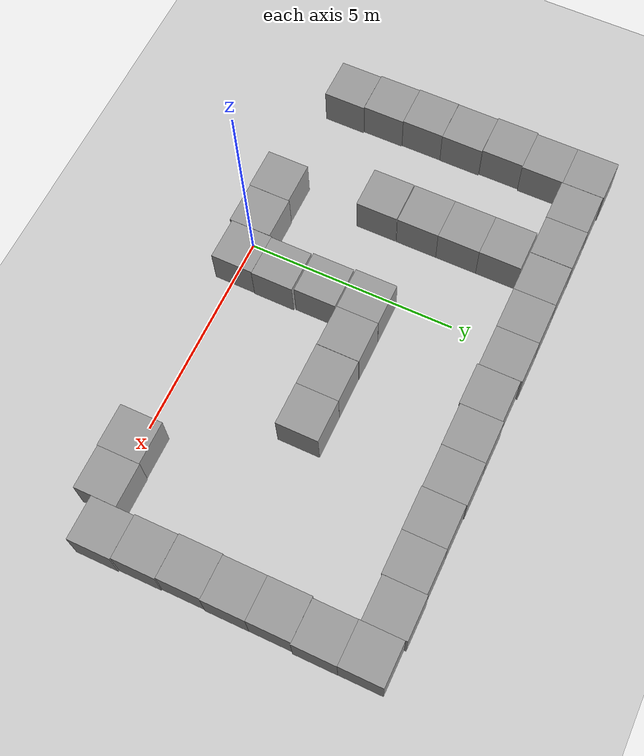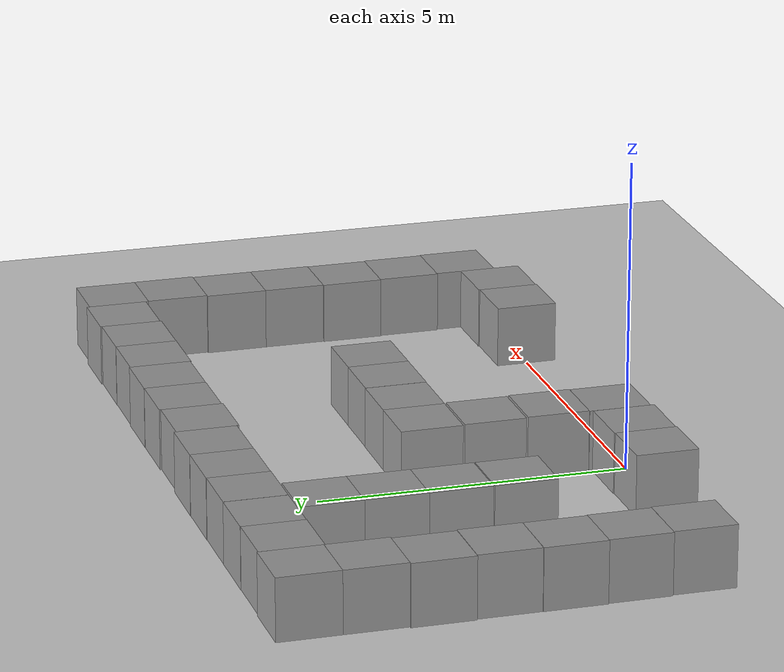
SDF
<sdf version="1.4">
 <world name="default">
  <model name="ground_plane">
   <static>1</static>
   <link name="link">
    <collision name="collision">
     <geometry><plane><normal>0 0 1</normal><size>100 100</size></plane></geometry>
     <surface><friction><ode><mu>100</mu><mu2>50</mu2></ode></friction></surface>
    </collision>
    <visual name="visual">
     <cast_shadows>0</cast_shadows>
     <geometry><plane><normal>0 0 1</normal><size>100 100</size></plane></geometry>
     <material>
      <script><uri>file://media/materials/scripts/gazebo.material</uri><name>Gazebo/Grey</name></script>
     </material>
    </visual>
    <velocity_decay><linear>0</linear><angular>0</angular></velocity_decay>
   </link>
  </model>
  <model name="unit_box_2">
   <pose>5.52699 0.007871 0.5 0 -0 0.001972</pose>
   <link name="link">
    <inertial>
     <mass>1</mass>
     <inertia><ixx>1</ixx><ixy>0</ixy><ixz>0</ixz><iyy>1</iyy><iyz>0</iyz><izz>1</izz></inertia>
    </inertial>
    <collision name="collision"><geometry><box><size>1 1 1</size></box></geometry></collision>
    <visual name="visual">
     <geometry><box><size>1 1 1</size></box></geometry>
     <material>
      <script><uri>file://media/materials/scripts/gazebo.material</uri><name>Gazebo/Grey</name></script>
     </material>
    </visual>
    <velocity_decay><linear>0</linear><angular>0</angular></velocity_decay>
   </link>
   <static>0</static>
  </model>
  <model name="unit_box_8">
   <pose>0.541933 3.15507 0.5 0 -0 -0.000614</pose>
   <link name="link">
    <inertial>
     <mass>1</mass>
     <inertia><ixx>1</ixx><ixy>0</ixy><ixz>0</ixz><iyy>1</iyy><iyz>0</iyz><izz>1</izz></inertia>
    </inertial>
    <collision name="collision"><geometry><box><size>1 1 1</size></box></geometry></collision>
    <visual name="visual">
     <geometry><box><size>1 1 1</size></box></geometry>
     <material>
      <script><uri>file://media/materials/scripts/gazebo.material</uri><name>Gazebo/Grey</name></script>
     </material>
    </visual>
    <velocity_decay><linear>0</linear><angular>0</angular></velocity_decay>
   </link>
   <static>0</static>
  </model>
  <model name="unit_box_9">
   <pose>-1.42464 0.017178 0.5 0 0 -0.000225</pose>
   <link name="link">
    <inertial>
     <mass>1</mass>
     <inertia><ixx>1</ixx><ixy>0</ixy><ixz>0</ixz><iyy>1</iyy><iyz>0</iyz><izz>1</izz></inertia>
    </inertial>
    <collision name="collision"><geometry><box><size>1 1 1</size></box></geometry></collision>
    <visual name="visual">
     <geometry><box><size>1 1 1</size></box></geometry>
     <material>
      <script><uri>file://media/materials/scripts/gazebo.material</uri><name>Gazebo/Grey</name></script>
     </material>
    </visual>
    <velocity_decay><linear>0</linear><angular>0</angular></velocity_decay>
   </link>
   <static>0</static>
  </model>
  <model name="unit_box_10">
   <pose>-0.424263 0.032274 0.5 0 0 -0.000928</pose>
   <link name="link">
    <inertial>
     <mass>1</mass>
     <inertia><ixx>1</ixx><ixy>0</ixy><ixz>0</ixz><iyy>1</iyy><iyz>0</iyz><izz>1</izz></inertia>
    </inertial>
    <collision name="collision"><geometry><box><size>1 1 1</size></box></geometry></collision>
    <visual name="visual">
     <geometry><box><size>1 1 1</size></box></geometry>
     <material>
      <script><uri>file://media/materials/scripts/gazebo.material</uri><name>Gazebo/Grey</name></script>
     </material>
    </visual>
    <velocity_decay><linear>0</linear><angular>0</angular></velocity_decay>
   </link>
   <static>0</static>
  </model>
  <model name="unit_box_11">
   <pose>6.52698 0.026177 0.5 0 -0 0.001957</pose>
   <link name="link">
    <inertial>
     <mass>1</mass>
     <inertia><ixx>1</ixx><ixy>0</ixy><ixz>0</ixz><iyy>1</iyy><iyz>0</iyz><izz>1</izz></inertia>
    </inertial>
    <collision name="collision"><geometry><box><size>1 1 1</size></box></geometry></collision>
    <visual name="visual">
     <geometry><box><size>1 1 1</size></box></geometry>
     <material>
      <script><uri>file://media/materials/scripts/gazebo.material</uri><name>Gazebo/Grey</name></script>
     </material>
    </visual>
    <velocity_decay><linear>0</linear><angular>0</angular></velocity_decay>
   </link>
   <static>0</static>
  </model>
  <model name="unit_box_13">
   <pose>0.577874 0.086392 0.5 0 0 -0.004729</pose>
   <link name="link">
    <inertial>
     <mass>1</mass>
     <inertia><ixx>1</ixx><ixy>0</ixy><ixz>0</ixz><iyy>1</iyy><iyz>0</iyz><izz>1</izz></inertia>
    </inertial>
    <collision name="collision"><geometry><box><size>1 1 1</size></box></geometry></collision>
    <visual name="visual">
     <geometry><box><size>1 1 1</size></box></geometry>
     <material>
      <script><uri>file://media/materials/scripts/gazebo.material</uri><name>Gazebo/Grey</name></script>
     </material>
    </visual>
    <velocity_decay><linear>0</linear><angular>0</angular></velocity_decay>
   </link>
   <static>0</static>
  </model>
  <model name="unit_box_20">
   <pose>0.597692 1.08685 0.5 0 0 -0.003673</pose>
   <link name="link">
    <inertial>
     <mass>1</mass>
     <inertia><ixx>1</ixx><ixy>0</ixy><ixz>0</ixz><iyy>1</iyy><iyz>0</iyz><izz>1</izz></inertia>
    </inertial>
    <collision name="collision"><geometry><box><size>1 1 1</size></box></geometry></collision>
    <visual name="visual">
     <geometry><box><size>1 1 1</size></box></geometry>
     <material>
      <script><uri>file://media/materials/scripts/gazebo.material</uri><name>Gazebo/Grey</name></script>
     </material>
    </visual>
    <velocity_decay><linear>0</linear><angular>0</angular></velocity_decay>
   </link>
   <static>0</static>
  </model>
  <model name="unit_box_27">
   <pose>0.569819 2.12332 0.5 0 -0 7e-05</pose>
   <link name="link">
    <inertial>
     <mass>1</mass>
     <inertia><ixx>1</ixx><ixy>0</ixy><ixz>0</ixz><iyy>1</iyy><iyz>0</iyz><izz>1</izz></inertia>
    </inertial>
    <collision name="collision"><geometry><box><size>1 1 1</size></box></geometry></collision>
    <visual name="visual">
     <geometry><box><size>1 1 1</size></box></geometry>
     <material>
      <script><uri>file://media/materials/scripts/gazebo.material</uri><name>Gazebo/Grey</name></script>
     </material>
    </visual>
    <velocity_decay><linear>0</linear><angular>0</angular></velocity_decay>
   </link>
   <static>0</static>
  </model>
  <model name="unit_box_35">
   <pose>-1.48166 6.4982 0.5 0 -0 -0.001227</pose>
   <link name="link">
    <inertial>
     <mass>1</mass>
     <inertia><ixx>1</ixx><ixy>0</ixy><ixz>0</ixz><iyy>1</iyy><iyz>0</iyz><izz>1</izz></inertia>
    </inertial>
    <collision name="collision"><geometry><box><size>1 1 1</size></box></geometry></collision>
    <visual name="visual">
     <geometry><box><size>1 1 1</size></box></geometry>
     <material>
      <script><uri>file://media/materials/scripts/gazebo.material</uri><name>Gazebo/Grey</name></script>
     </material>
    </visual>
    <velocity_decay><linear>0</linear><angular>0</angular></velocity_decay>
   </link>
   <static>0</static>
  </model>
  <model name="unit_box_66">
   <pose>-4.44414 0.505606 0.5 0 0 -0.001511</pose>
   <link name="link">
    <inertial>
     <mass>1</mass>
     <inertia><ixx>1</ixx><ixy>0</ixy><ixz>0</ixz><iyy>1</iyy><iyz>0</iyz><izz>1</izz></inertia>
    </inertial>
    <collision name="collision"><geometry><box><size>1 1 1</size></box></geometry></collision>
    <visual name="visual">
     <geometry><box><size>1 1 1</size></box></geometry>
     <material>
      <script><uri>file://media/materials/scripts/gazebo.material</uri><name>Gazebo/Grey</name></script>
     </material>
    </visual>
    <velocity_decay><linear>0</linear><angular>0</angular></velocity_decay>
   </link>
   <static>0</static>
  </model>
  <model name="unit_box_67">
   <pose>-4.47509 1.50697 0.5 0 -0 0.001289</pose>
   <link name="link">
    <inertial>
     <mass>1</mass>
     <inertia><ixx>1</ixx><ixy>0</ixy><ixz>0</ixz><iyy>1</iyy><iyz>0</iyz><izz>1</izz></inertia>
    </inertial>
    <collision name="collision"><geometry><box><size>1 1 1</size></box></geometry></collision>
    <visual name="visual">
     <geometry><box><size>1 1 1</size></box></geometry>
     <material>
      <script><uri>file://media/materials/scripts/gazebo.material</uri><name>Gazebo/Grey</name></script>
     </material>
    </visual>
    <velocity_decay><linear>0</linear><angular>0</angular></velocity_decay>
   </link>
   <static>0</static>
  </model>
  <model name="unit_box_68">
   <pose>-4.49632 2.50695 0.5 0 -0 0.001286</pose>
   <link name="link">
    <inertial>
     <mass>1</mass>
     <inertia><ixx>1</ixx><ixy>0</ixy><ixz>0</ixz><iyy>1</iyy><iyz>0</iyz><izz>1</izz></inertia>
    </inertial>
    <collision name="collision"><geometry><box><size>1 1 1</size></box></geometry></collision>
    <visual name="visual">
     <geometry><box><size>1 1 1</size></box></geometry>
     <material>
      <script><uri>file://media/materials/scripts/gazebo.material</uri><name>Gazebo/Grey</name></script>
     </material>
    </visual>
    <velocity_decay><linear>0</linear><angular>0</angular></velocity_decay>
   </link>
   <static>0</static>
  </model>
  <model name="unit_box_69">
   <pose>-4.48877 3.50867 0.5 -0 -0 -0.002126</pose>
   <link name="link">
    <inertial>
     <mass>1</mass>
     <inertia><ixx>1</ixx><ixy>0</ixy><ixz>0</ixz><iyy>1</iyy><iyz>0</iyz><izz>1</izz></inertia>
    </inertial>
    <collision name="collision"><geometry><box><size>1 1 1</size></box></geometry></collision>
    <visual name="visual">
     <geometry><box><size>1 1 1</size></box></geometry>
     <material>
      <script><uri>file://media/materials/scripts/gazebo.material</uri><name>Gazebo/Grey</name></script>
     </material>
    </visual>
    <velocity_decay><linear>0</linear><angular>0</angular></velocity_decay>
   </link>
   <static>0</static>
  </model>
  <model name="unit_box_70">
   <pose>-4.52021 4.51315 0.5 0 -0 0.001164</pose>
   <link name="link">
    <inertial>
     <mass>1</mass>
     <inertia><ixx>1</ixx><ixy>0</ixy><ixz>0</ixz><iyy>1</iyy><iyz>0</iyz><izz>1</izz></inertia>
    </inertial>
    <collision name="collision"><geometry><box><size>1 1 1</size></box></geometry></collision>
    <visual name="visual">
     <geometry><box><size>1 1 1</size></box></geometry>
     <material>
      <script><uri>file://media/materials/scripts/gazebo.material</uri><name>Gazebo/Grey</name></script>
     </material>
    </visual>
    <velocity_decay><linear>0</linear><angular>0</angular></velocity_decay>
   </link>
   <static>0</static>
  </model>
  <model name="unit_box_71">
   <pose>-4.48521 5.51325 0.5 0 -0 0.001231</pose>
   <link name="link">
    <inertial>
     <mass>1</mass>
     <inertia><ixx>1</ixx><ixy>0</ixy><ixz>0</ixz><iyy>1</iyy><iyz>0</iyz><izz>1</izz></inertia>
    </inertial>
    <collision name="collision"><geometry><box><size>1 1 1</size></box></geometry></collision>
    <visual name="visual">
     <geometry><box><size>1 1 1</size></box></geometry>
     <material>
      <script><uri>file://media/materials/scripts/gazebo.material</uri><name>Gazebo/Grey</name></script>
     </material>
    </visual>
    <velocity_decay><linear>0</linear><angular>0</angular></velocity_decay>
   </link>
   <static>0</static>
  </model>
  <model name="unit_box_72">
   <pose>-4.48655 6.51333 0.5 0 -0 0.001313</pose>
   <link name="link">
    <inertial>
     <mass>1</mass>
     <inertia><ixx>1</ixx><ixy>0</ixy><ixz>0</ixz><iyy>1</iyy><iyz>0</iyz><izz>1</izz></inertia>
    </inertial>
    <collision name="collision"><geometry><box><size>1 1 1</size></box></geometry></collision>
    <visual name="visual">
     <geometry><box><size>1 1 1</size></box></geometry>
     <material>
      <script><uri>file://media/materials/scripts/gazebo.material</uri><name>Gazebo/Grey</name></script>
     </material>
    </visual>
    <velocity_decay><linear>0</linear><angular>0</angular></velocity_decay>
   </link>
   <static>0</static>
  </model>
  <model name="unit_box_73">
   <pose>-3.4852 6.49521 0.5 0 -0 0.00011</pose>
   <link name="link">
    <inertial>
     <mass>1</mass>
     <inertia><ixx>1</ixx><ixy>0</ixy><ixz>0</ixz><iyy>1</iyy><iyz>0</iyz><izz>1</izz></inertia>
    </inertial>
    <collision name="collision"><geometry><box><size>1 1 1</size></box></geometry></collision>
    <visual name="visual">
     <geometry><box><size>1 1 1</size></box></geometry>
     <material>
      <script><uri>file://media/materials/scripts/gazebo.material</uri><name>Gazebo/Grey</name></script>
     </material>
    </visual>
    <velocity_decay><linear>0</linear><angular>0</angular></velocity_decay>
   </link>
   <static>0</static>
  </model>
  <model name="unit_box_74">
   <pose>-2.48507 6.49995 0.5 0 -0 0.000269</pose>
   <link name="link">
    <inertial>
     <mass>1</mass>
     <inertia><ixx>1</ixx><ixy>0</ixy><ixz>0</ixz><iyy>1</iyy><iyz>0</iyz><izz>1</izz></inertia>
    </inertial>
    <collision name="collision"><geometry><box><size>1 1 1</size></box></geometry></collision>
    <visual name="visual">
     <geometry><box><size>1 1 1</size></box></geometry>
     <material>
      <script><uri>file://media/materials/scripts/gazebo.material</uri><name>Gazebo/Grey</name></script>
     </material>
    </visual>
    <velocity_decay><linear>0</linear><angular>0</angular></velocity_decay>
   </link>
   <static>0</static>
  </model>
  <model name="unit_box_76">
   <pose>-0.481557 6.50236 0.5 0 -0 -0.001259</pose>
   <link name="link">
    <inertial>
     <mass>1</mass>
     <inertia><ixx>1</ixx><ixy>0</ixy><ixz>0</ixz><iyy>1</iyy><iyz>0</iyz><izz>1</izz></inertia>
    </inertial>
    <collision name="collision"><geometry><box><size>1 1 1</size></box></geometry></collision>
    <visual name="visual">
     <geometry><box><size>1 1 1</size></box></geometry>
     <material>
      <script><uri>file://media/materials/scripts/gazebo.material</uri><name>Gazebo/Grey</name></script>
     </material>
    </visual>
    <velocity_decay><linear>0</linear><angular>0</angular></velocity_decay>
   </link>
   <static>0</static>
  </model>
  <model name="unit_box_77">
   <pose>0.518563 6.50445 0.5 0 0 -0.001254</pose>
   <link name="link">
    <inertial>
     <mass>1</mass>
     <inertia><ixx>1</ixx><ixy>0</ixy><ixz>0</ixz><iyy>1</iyy><iyz>0</iyz><izz>1</izz></inertia>
    </inertial>
    <collision name="collision"><geometry><box><size>1 1 1</size></box></geometry></collision>
    <visual name="visual">
     <geometry><box><size>1 1 1</size></box></geometry>
     <material>
      <script><uri>file://media/materials/scripts/gazebo.material</uri><name>Gazebo/Grey</name></script>
     </material>
    </visual>
    <velocity_decay><linear>0</linear><angular>0</angular></velocity_decay>
   </link>
   <static>0</static>
  </model>
  <model name="unit_box_78">
   <pose>1.51856 6.46711 0.5 0 0 -0.00118</pose>
   <link name="link">
    <inertial>
     <mass>1</mass>
     <inertia><ixx>1</ixx><ixy>0</ixy><ixz>0</ixz><iyy>1</iyy><iyz>0</iyz><izz>1</izz></inertia>
    </inertial>
    <collision name="collision"><geometry><box><size>1 1 1</size></box></geometry></collision>
    <visual name="visual">
     <geometry><box><size>1 1 1</size></box></geometry>
     <material>
      <script><uri>file://media/materials/scripts/gazebo.material</uri><name>Gazebo/Grey</name></script>
     </material>
    </visual>
    <velocity_decay><linear>0</linear><angular>0</angular></velocity_decay>
   </link>
   <static>0</static>
  </model>
  <model name="unit_box_79">
   <pose>2.51862 6.49016 0.5 0 0 -0.001165</pose>
   <link name="link">
    <inertial>
     <mass>1</mass>
     <inertia><ixx>1</ixx><ixy>0</ixy><ixz>0</ixz><iyy>1</iyy><iyz>0</iyz><izz>1</izz></inertia>
    </inertial>
    <collision name="collision"><geometry><box><size>1 1 1</size></box></geometry></collision>
    <visual name="visual">
     <geometry><box><size>1 1 1</size></box></geometry>
     <material>
      <script><uri>file://media/materials/scripts/gazebo.material</uri><name>Gazebo/Grey</name></script>
     </material>
    </visual>
    <velocity_decay><linear>0</linear><angular>0</angular></velocity_decay>
   </link>
   <static>0</static>
  </model>
  <model name="unit_box_80">
   <pose>3.51864 6.49279 0.5 0 0 -0.00115</pose>
   <link name="link">
    <inertial>
     <mass>1</mass>
     <inertia><ixx>1</ixx><ixy>0</ixy><ixz>0</ixz><iyy>1</iyy><iyz>0</iyz><izz>1</izz></inertia>
    </inertial>
    <collision name="collision"><geometry><box><size>1 1 1</size></box></geometry></collision>
    <visual name="visual">
     <geometry><box><size>1 1 1</size></box></geometry>
     <material>
      <script><uri>file://media/materials/scripts/gazebo.material</uri><name>Gazebo/Grey</name></script>
     </material>
    </visual>
    <velocity_decay><linear>0</linear><angular>0</angular></velocity_decay>
   </link>
   <static>0</static>
  </model>
  <model name="unit_box_81">
   <pose>4.51865 6.47674 0.5 -0 -0 -0.001084</pose>
   <link name="link">
    <inertial>
     <mass>1</mass>
     <inertia><ixx>1</ixx><ixy>0</ixy><ixz>0</ixz><iyy>1</iyy><iyz>0</iyz><izz>1</izz></inertia>
    </inertial>
    <collision name="collision"><geometry><box><size>1 1 1</size></box></geometry></collision>
    <visual name="visual">
     <geometry><box><size>1 1 1</size></box></geometry>
     <material>
      <script><uri>file://media/materials/scripts/gazebo.material</uri><name>Gazebo/Grey</name></script>
     </material>
    </visual>
    <velocity_decay><linear>0</linear><angular>0</angular></velocity_decay>
   </link>
   <static>0</static>
  </model>
  <model name="unit_box_82">
   <pose>5.51866 6.47915 0.5 0 -0 -0.001078</pose>
   <link name="link">
    <inertial>
     <mass>1</mass>
     <inertia><ixx>1</ixx><ixy>0</ixy><ixz>0</ixz><iyy>1</iyy><iyz>0</iyz><izz>1</izz></inertia>
    </inertial>
    <collision name="collision"><geometry><box><size>1 1 1</size></box></geometry></collision>
    <visual name="visual">
     <geometry><box><size>1 1 1</size></box></geometry>
     <material>
      <script><uri>file://media/materials/scripts/gazebo.material</uri><name>Gazebo/Grey</name></script>
     </material>
    </visual>
    <velocity_decay><linear>0</linear><angular>0</angular></velocity_decay>
   </link>
   <static>0</static>
  </model>
  <model name="unit_box_83">
   <pose>6.51874 6.49978 0.5 -0 -0 -0.000968</pose>
   <link name="link">
    <inertial>
     <mass>1</mass>
     <inertia><ixx>1</ixx><ixy>0</ixy><ixz>0</ixz><iyy>1</iyy><iyz>0</iyz><izz>1</izz></inertia>
    </inertial>
    <collision name="collision"><geometry><box><size>1 1 1</size></box></geometry></collision>
    <visual name="visual">
     <geometry><box><size>1 1 1</size></box></geometry>
     <material>
      <script><uri>file://media/materials/scripts/gazebo.material</uri><name>Gazebo/Grey</name></script>
     </material>
    </visual>
    <velocity_decay><linear>0</linear><angular>0</angular></velocity_decay>
   </link>
   <static>0</static>
  </model>
  <model name="unit_box_84">
   <pose>7.5263 0.450156 0.5 0 -0 0.00252</pose>
   <link name="link">
    <inertial>
     <mass>1</mass>
     <inertia><ixx>1</ixx><ixy>0</ixy><ixz>0</ixz><iyy>1</iyy><iyz>0</iyz><izz>1</izz></inertia>
    </inertial>
    <collision name="collision"><geometry><box><size>1 1 1</size></box></geometry></collision>
    <visual name="visual">
     <geometry><box><size>1 1 1</size></box></geometry>
     <material>
      <script><uri>file://media/materials/scripts/gazebo.material</uri><name>Gazebo/Grey</name></script>
     </material>
    </visual>
    <velocity_decay><linear>0</linear><angular>0</angular></velocity_decay>
   </link>
   <static>0</static>
  </model>
  <model name="unit_box_85">
   <pose>7.49946 1.45018 0.5 0 -0 0.002641</pose>
   <link name="link">
    <inertial>
     <mass>1</mass>
     <inertia><ixx>1</ixx><ixy>0</ixy><ixz>0</ixz><iyy>1</iyy><iyz>0</iyz><izz>1</izz></inertia>
    </inertial>
    <collision name="collision"><geometry><box><size>1 1 1</size></box></geometry></collision>
    <visual name="visual">
     <geometry><box><size>1 1 1</size></box></geometry>
     <material>
      <script><uri>file://media/materials/scripts/gazebo.material</uri><name>Gazebo/Grey</name></script>
     </material>
    </visual>
    <velocity_decay><linear>0</linear><angular>0</angular></velocity_decay>
   </link>
   <static>0</static>
  </model>
  <model name="unit_box_86">
   <pose>7.47752 2.4509 0.5 0 -0 0.001102</pose>
   <link name="link">
    <inertial>
     <mass>1</mass>
     <inertia><ixx>1</ixx><ixy>0</ixy><ixz>0</ixz><iyy>1</iyy><iyz>0</iyz><izz>1</izz></inertia>
    </inertial>
    <collision name="collision"><geometry><box><size>1 1 1</size></box></geometry></collision>
    <visual name="visual">
     <geometry><box><size>1 1 1</size></box></geometry>
     <material>
      <script><uri>file://media/materials/scripts/gazebo.material</uri><name>Gazebo/Grey</name></script>
     </material>
    </visual>
    <velocity_decay><linear>0</linear><angular>0</angular></velocity_decay>
   </link>
   <static>0</static>
  </model>
  <model name="unit_box_87">
   <pose>7.49252 3.45118 0.5 0 -0 0.000558</pose>
   <link name="link">
    <inertial>
     <mass>1</mass>
     <inertia><ixx>1</ixx><ixy>0</ixy><ixz>0</ixz><iyy>1</iyy><iyz>0</iyz><izz>1</izz></inertia>
    </inertial>
    <collision name="collision"><geometry><box><size>1 1 1</size></box></geometry></collision>
    <visual name="visual">
     <geometry><box><size>1 1 1</size></box></geometry>
     <material>
      <script><uri>file://media/materials/scripts/gazebo.material</uri><name>Gazebo/Grey</name></script>
     </material>
    </visual>
    <velocity_decay><linear>0</linear><angular>0</angular></velocity_decay>
   </link>
   <static>0</static>
  </model>
  <model name="unit_box_88">
   <pose>7.48932 4.45129 0.5 0 -0 0.000335</pose>
   <link name="link">
    <inertial>
     <mass>1</mass>
     <inertia><ixx>1</ixx><ixy>0</ixy><ixz>0</ixz><iyy>1</iyy><iyz>0</iyz><izz>1</izz></inertia>
    </inertial>
    <collision name="collision"><geometry><box><size>1 1 1</size></box></geometry></collision>
    <visual name="visual">
     <geometry><box><size>1 1 1</size></box></geometry>
     <material>
      <script><uri>file://media/materials/scripts/gazebo.material</uri><name>Gazebo/Grey</name></script>
     </material>
    </visual>
    <velocity_decay><linear>0</linear><angular>0</angular></velocity_decay>
   </link>
   <static>0</static>
  </model>
  <model name="unit_box_89">
   <pose>7.52273 5.45185 0.5 0 0 -0.00084</pose>
   <link name="link">
    <inertial>
     <mass>1</mass>
     <inertia><ixx>1</ixx><ixy>0</ixy><ixz>0</ixz><iyy>1</iyy><iyz>0</iyz><izz>1</izz></inertia>
    </inertial>
    <collision name="collision"><geometry><box><size>1 1 1</size></box></geometry></collision>
    <visual name="visual">
     <geometry><box><size>1 1 1</size></box></geometry>
     <material>
      <script><uri>file://media/materials/scripts/gazebo.material</uri><name>Gazebo/Grey</name></script>
     </material>
    </visual>
    <velocity_decay><linear>0</linear><angular>0</angular></velocity_decay>
   </link>
   <static>0</static>
  </model>
  <model name="unit_box_90">
   <pose>7.51876 6.45186 0.5 -0 -0 -0.000844</pose>
   <link name="link">
    <inertial>
     <mass>1</mass>
     <inertia><ixx>1</ixx><ixy>0</ixy><ixz>0</ixz><iyy>1</iyy><iyz>0</iyz><izz>1</izz></inertia>
    </inertial>
    <collision name="collision"><geometry><box><size>1 1 1</size></box></geometry></collision>
    <visual name="visual">
     <geometry><box><size>1 1 1</size></box></geometry>
     <material>
      <script><uri>file://media/materials/scripts/gazebo.material</uri><name>Gazebo/Grey</name></script>
     </material>
    </visual>
    <velocity_decay><linear>0</linear><angular>0</angular></velocity_decay>
   </link>
   <static>0</static>
  </model>
  <model name="unit_box_91">
   <pose>1.54194 3.15202 0.5 0 0 -0.000612</pose>
   <link name="link">
    <inertial>
     <mass>1</mass>
     <inertia><ixx>1</ixx><ixy>0</ixy><ixz>0</ixz><iyy>1</iyy><iyz>0</iyz><izz>1</izz></inertia>
    </inertial>
    <collision name="collision"><geometry><box><size>1 1 1</size></box></geometry></collision>
    <visual name="visual">
     <geometry><box><size>1 1 1</size></box></geometry>
     <material>
      <script><uri>file://media/materials/scripts/gazebo.material</uri><name>Gazebo/Grey</name></script>
     </material>
    </visual>
    <velocity_decay><linear>0</linear><angular>0</angular></velocity_decay>
   </link>
   <static>0</static>
  </model>
  <model name="unit_box_92">
   <pose>2.54544 3.14603 0.5 0 -0 -1e-05</pose>
   <link name="link">
    <inertial>
     <mass>1</mass>
     <inertia><ixx>1</ixx><ixy>0</ixy><ixz>0</ixz><iyy>1</iyy><iyz>0</iyz><izz>1</izz></inertia>
    </inertial>
    <collision name="collision"><geometry><box><size>1 1 1</size></box></geometry></collision>
    <visual name="visual">
     <geometry><box><size>1 1 1</size></box></geometry>
     <material>
      <script><uri>file://media/materials/scripts/gazebo.material</uri><name>Gazebo/Grey</name></script>
     </material>
    </visual>
    <velocity_decay><linear>0</linear><angular>0</angular></velocity_decay>
   </link>
   <static>0</static>
  </model>
  <model name="unit_box_93">
   <pose>3.54544 3.14475 0.5 -0 -0 -1e-05</pose>
   <link name="link">
    <inertial>
     <mass>1</mass>
     <inertia><ixx>1</ixx><ixy>0</ixy><ixz>0</ixz><iyy>1</iyy><iyz>0</iyz><izz>1</izz></inertia>
    </inertial>
    <collision name="collision"><geometry><box><size>1 1 1</size></box></geometry></collision>
    <visual name="visual">
     <geometry><box><size>1 1 1</size></box></geometry>
     <material>
      <script><uri>file://media/materials/scripts/gazebo.material</uri><name>Gazebo/Grey</name></script>
     </material>
    </visual>
    <velocity_decay><linear>0</linear><angular>0</angular></velocity_decay>
   </link>
   <static>0</static>
  </model>
  <model name="unit_box_94">
   <pose>-1.99995 5.47061 0.5 0 0 -4.1e-05</pose>
   <link name="link">
    <inertial>
     <mass>1</mass>
     <inertia><ixx>1</ixx><ixy>0</ixy><ixz>0</ixz><iyy>1</iyy><iyz>0</iyz><izz>1</izz></inertia>
    </inertial>
    <collision name="collision"><geometry><box><size>1 1 1</size></box></geometry></collision>
    <visual name="visual">
     <geometry><box><size>1 1 1</size></box></geometry>
     <material>
      <script><uri>file://media/materials/scripts/gazebo.material</uri><name>Gazebo/Grey</name></script>
     </material>
    </visual>
    <velocity_decay><linear>0</linear><angular>0</angular></velocity_decay>
   </link>
   <static>0</static>
  </model>
  <model name="unit_box_95">
   <pose>-1.99999 4.47058 0.5 0 -0 -1.5e-05</pose>
   <link name="link">
    <inertial>
     <mass>1</mass>
     <inertia><ixx>1</ixx><ixy>0</ixy><ixz>0</ixz><iyy>1</iyy><iyz>0</iyz><izz>1</izz></inertia>
    </inertial>
    <collision name="collision"><geometry><box><size>1 1 1</size></box></geometry></collision>
    <visual name="visual">
     <geometry><box><size>1 1 1</size></box></geometry>
     <material>
      <script><uri>file://media/materials/scripts/gazebo.material</uri><name>Gazebo/Grey</name></script>
     </material>
    </visual>
    <velocity_decay><linear>0</linear><angular>0</angular></velocity_decay>
   </link>
   <static>0</static>
  </model>
  <model name="unit_box_96">
   <pose>-1.99995 3.4705 0.5 0 -0 6.9e-05</pose>
   <link name="link">
    <inertial>
     <mass>1</mass>
     <inertia><ixx>1</ixx><ixy>0</ixy><ixz>0</ixz><iyy>1</iyy><iyz>0</iyz><izz>1</izz></inertia>
    </inertial>
    <collision name="collision"><geometry><box><size>1 1 1</size></box></geometry></collision>
    <visual name="visual">
     <geometry><box><size>1 1 1</size></box></geometry>
     <material>
      <script><uri>file://media/materials/scripts/gazebo.material</uri><name>Gazebo/Grey</name></script>
     </material>
    </visual>
    <velocity_decay><linear>0</linear><angular>0</angular></velocity_decay>
   </link>
   <static>0</static>
  </model>
  <model name="unit_box_97">
   <pose>-2 2.45379 0.5 0 -0 0</pose>
   <link name="link">
    <inertial>
     <mass>1</mass>
     <inertia><ixx>1</ixx><ixy>0</ixy><ixz>0</ixz><iyy>1</iyy><iyz>0</iyz><izz>1</izz></inertia>
    </inertial>
    <collision name="collision"><geometry><box><size>1 1 1</size></box></geometry></collision>
    <visual name="visual">
     <geometry><box><size>1 1 1</size></box></geometry>
     <material>
      <script><uri>file://media/materials/scripts/gazebo.material</uri><name>Gazebo/Grey</name></script>
     </material>
    </visual>
    <velocity_decay><linear>0</linear><angular>0</angular></velocity_decay>
   </link>
   <static>0</static>
  </model>
 </world>
</sdf>
